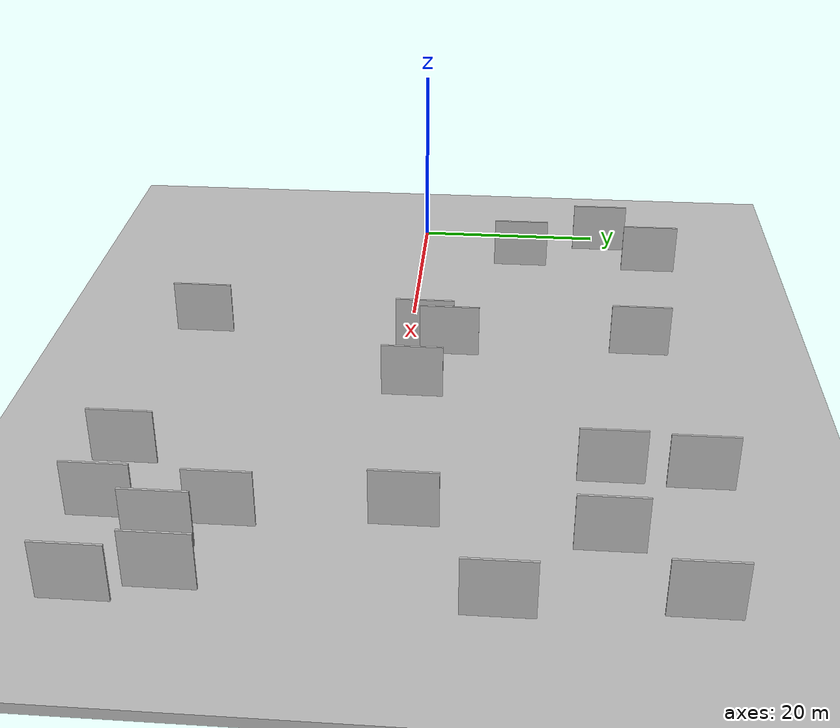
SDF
<?xml version="1.0" encoding="utf-8"?>

<sdf version="1.6">

   <world name="default">

      <gui fullscreen="0">

         <camera name="user_camera">

            <pose>-15 0 4.57585 0 0 0</pose>

            <view_controller>orbit</view_controller>

         </camera>

      </gui>

      <scene>

         <sky>

           <clouds>

             <speed>12</speed>

           </clouds>

         </sky>

         <ambient>0.4 0.4 0.4 1</ambient>

         <background>0.7 0.7 0.7 1</background>

         <shadows>1</shadows>

      </scene>

      <gravity>0 0 -9.8066</gravity>

      <magnetic_field>6e-06 2.3e-05 -4.2e-05</magnetic_field>

      <physics default="0" name="default_physics" type="ode">

         <ode>

            <solver>

               <type>quick</type>

               <iters>10</iters>

               <sor>1.0</sor>

               <use_dynamic_moi_rescaling>0</use_dynamic_moi_rescaling>

            </solver>

            <constraints>

               <cfm>0</cfm>

               <erp>0.2</erp>

               <contact_max_correcting_vel>100</contact_max_correcting_vel>

               <contact_surface_layer>0.001</contact_surface_layer>

            </constraints>

         </ode>

         <max_step_size>0.004</max_step_size>

         <real_time_factor>1</real_time_factor>

         <real_time_update_rate>250</real_time_update_rate>

      </physics>

      <light name="sun" type="directional">

         <cast_shadows>1</cast_shadows>

         <pose>0 0 10 0 0 0</pose>

         <diffuse>0.8 0.8 0.8 1</diffuse>

         <specular>0.2 0.2 0.2 1</specular>

         <attenuation>

            <range>1000</range>

            <constant>0.9</constant>

            <linear>0.01</linear>

            <quadratic>0.001</quadratic>

         </attenuation>

         <direction>-0.5 0.1 -0.9</direction>

      </light>

      <include>

         <name>ground_plane_1</name>

         <uri>model://HANNAS_ground_plane</uri>

         <pose>0 0 0  0 0 0</pose>

      </include>

      <include>

         <name>ground_plane_2</name>

         <uri>model://HANNAS_ground_plane</uri>

         <pose>100 0 0  0 0 0</pose>

      </include>

      <model name="HANNAS_wall_1">

         <static>1</static>

         <pose frame="">67.2538 10.1182 0.0 0.000000 0.000000 1.570796</pose>

         <link name="link">

            <pose frame="">0 0 3.00 0 0 0</pose>

            <collision name="collision">

               <geometry>

                  <box>

                     <size>6.00 0.2 6.00</size>

                  </box>

               </geometry>

               <max_contacts>10</max_contacts>

               <surface>

                  <contact>

                     <ode/>

                  </contact>

                  <bounce/>

                  <friction>

                     <torsional>

                        <ode/>

                     </torsional>

                     <ode/>

                  </friction>

               </surface>

            </collision>

            <visual name="visual">

               <cast_shadows>0</cast_shadows>

               <geometry>

                  <box>

                     <size>6.00 0.2 6.00</size>

                  </box>

               </geometry>

               <material>

                  <script>

                     <uri>model://HANNAS_wall/materials/scripts</uri>

                     <uri>model://HANNAS_wall/materials/textures</uri>

                     <name>vrc/HANNAS_wall</name>

                  </script>

               </material>

            </visual>

            <self_collide>0</self_collide>

            <enable_wind>0</enable_wind>

            <kinematic>0</kinematic>

         </link>

      </model>

      <model name="HANNAS_wall_2">

         <static>1</static>

         <pose frame="">56.9212 2.0275 0.0 0.000000 0.000000 1.570796</pose>

         <link name="link">

            <pose frame="">0 0 3.00 0 0 0</pose>

            <collision name="collision">

               <geometry>

                  <box>

                     <size>6.00 0.2 6.00</size>

                  </box>

               </geometry>

               <max_contacts>10</max_contacts>

               <surface>

                  <contact>

                     <ode/>

                  </contact>

                  <bounce/>

                  <friction>

                     <torsional>

                        <ode/>

                     </torsional>

                     <ode/>

                  </friction>

               </surface>

            </collision>

            <visual name="visual">

               <cast_shadows>0</cast_shadows>

               <geometry>

                  <box>

                     <size>6.00 0.2 6.00</size>

                  </box>

               </geometry>

               <material>

                  <script>

                     <uri>model://HANNAS_wall/materials/scripts</uri>

                     <uri>model://HANNAS_wall/materials/textures</uri>

                     <name>vrc/HANNAS_wall</name>

                  </script>

               </material>

            </visual>

            <self_collide>0</self_collide>

            <enable_wind>0</enable_wind>

            <kinematic>0</kinematic>

         </link>

      </model>

      <model name="HANNAS_wall_3">

         <static>1</static>

         <pose frame="">58.0375 -13.3037 0.0 0.000000 0.000000 1.570796</pose>

         <link name="link">

            <pose frame="">0 0 3.00 0 0 0</pose>

            <collision name="collision">

               <geometry>

                  <box>

                     <size>6.00 0.2 6.00</size>

                  </box>

               </geometry>

               <max_contacts>10</max_contacts>

               <surface>

                  <contact>

                     <ode/>

                  </contact>

                  <bounce/>

                  <friction>

                     <torsional>

                        <ode/>

                     </torsional>

                     <ode/>

                  </friction>

               </surface>

            </collision>

            <visual name="visual">

               <cast_shadows>0</cast_shadows>

               <geometry>

                  <box>

                     <size>6.00 0.2 6.00</size>

                  </box>

               </geometry>

               <material>

                  <script>

                     <uri>model://HANNAS_wall/materials/scripts</uri>

                     <uri>model://HANNAS_wall/materials/textures</uri>

                     <name>vrc/HANNAS_wall</name>

                  </script>

               </material>

            </visual>

            <self_collide>0</self_collide>

            <enable_wind>0</enable_wind>

            <kinematic>0</kinematic>

         </link>

      </model>

      <model name="HANNAS_wall_4">

         <static>1</static>

         <pose frame="">49.6122 19.6578 0.0 0.000000 0.000000 1.570796</pose>

         <link name="link">

            <pose frame="">0 0 3.00 0 0 0</pose>

            <collision name="collision">

               <geometry>

                  <box>

                     <size>6.00 0.2 6.00</size>

                  </box>

               </geometry>

               <max_contacts>10</max_contacts>

               <surface>

                  <contact>

                     <ode/>

                  </contact>

                  <bounce/>

                  <friction>

                     <torsional>

                        <ode/>

                     </torsional>

                     <ode/>

                  </friction>

               </surface>

            </collision>

            <visual name="visual">

               <cast_shadows>0</cast_shadows>

               <geometry>

                  <box>

                     <size>6.00 0.2 6.00</size>

                  </box>

               </geometry>

               <material>

                  <script>

                     <uri>model://HANNAS_wall/materials/scripts</uri>

                     <uri>model://HANNAS_wall/materials/textures</uri>

                     <name>vrc/HANNAS_wall</name>

                  </script>

               </material>

            </visual>

            <self_collide>0</self_collide>

            <enable_wind>0</enable_wind>

            <kinematic>0</kinematic>

         </link>

      </model>

      <model name="HANNAS_wall_5">

         <static>1</static>

         <pose frame="">8.8393 26.0841 0.0 0.000000 0.000000 1.570796</pose>

         <link name="link">

            <pose frame="">0 0 3.00 0 0 0</pose>

            <collision name="collision">

               <geometry>

                  <box>

                     <size>6.00 0.2 6.00</size>

                  </box>

               </geometry>

               <max_contacts>10</max_contacts>

               <surface>

                  <contact>

                     <ode/>

                  </contact>

                  <bounce/>

                  <friction>

                     <torsional>

                        <ode/>

                     </torsional>

                     <ode/>

                  </friction>

               </surface>

            </collision>

            <visual name="visual">

               <cast_shadows>0</cast_shadows>

               <geometry>

                  <box>

                     <size>6.00 0.2 6.00</size>

                  </box>

               </geometry>

               <material>

                  <script>

                     <uri>model://HANNAS_wall/materials/scripts</uri>

                     <uri>model://HANNAS_wall/materials/textures</uri>

                     <name>vrc/HANNAS_wall</name>

                  </script>

               </material>

            </visual>

            <self_collide>0</self_collide>

            <enable_wind>0</enable_wind>

            <kinematic>0</kinematic>

         </link>

      </model>

      <model name="HANNAS_wall_6">

         <static>1</static>

         <pose frame="">49.9615 -23.7700 0.0 0.000000 0.000000 1.570796</pose>

         <link name="link">

            <pose frame="">0 0 3.00 0 0 0</pose>

            <collision name="collision">

               <geometry>

                  <box>

                     <size>6.00 0.2 6.00</size>

                  </box>

               </geometry>

               <max_contacts>10</max_contacts>

               <surface>

                  <contact>

                     <ode/>

                  </contact>

                  <bounce/>

                  <friction>

                     <torsional>

                        <ode/>

                     </torsional>

                     <ode/>

                  </friction>

               </surface>

            </collision>

            <visual name="visual">

               <cast_shadows>0</cast_shadows>

               <geometry>

                  <box>

                     <size>6.00 0.2 6.00</size>

                  </box>

               </geometry>

               <material>

                  <script>

                     <uri>model://HANNAS_wall/materials/scripts</uri>

                     <uri>model://HANNAS_wall/materials/textures</uri>

                     <name>vrc/HANNAS_wall</name>

                  </script>

               </material>

            </visual>

            <self_collide>0</self_collide>

            <enable_wind>0</enable_wind>

            <kinematic>0</kinematic>

         </link>

      </model>

      <model name="HANNAS_wall_7">

         <static>1</static>

         <pose frame="">66.1703 25.8979 0.0 0.000000 0.000000 1.570796</pose>

         <link name="link">

            <pose frame="">0 0 3.00 0 0 0</pose>

            <collision name="collision">

               <geometry>

                  <box>

                     <size>6.00 0.2 6.00</size>

                  </box>

               </geometry>

               <max_contacts>10</max_contacts>

               <surface>

                  <contact>

                     <ode/>

                  </contact>

                  <bounce/>

                  <friction>

                     <torsional>

                        <ode/>

                     </torsional>

                     <ode/>

                  </friction>

               </surface>

            </collision>

            <visual name="visual">

               <cast_shadows>0</cast_shadows>

               <geometry>

                  <box>

                     <size>6.00 0.2 6.00</size>

                  </box>

               </geometry>

               <material>

                  <script>

                     <uri>model://HANNAS_wall/materials/scripts</uri>

                     <uri>model://HANNAS_wall/materials/textures</uri>

                     <name>vrc/HANNAS_wall</name>

                  </script>

               </material>

            </visual>

            <self_collide>0</self_collide>

            <enable_wind>0</enable_wind>

            <kinematic>0</kinematic>

         </link>

      </model>

      <model name="HANNAS_wall_8">

         <static>1</static>

         <pose frame="">29.0464 4.3088 0.0 0.000000 0.000000 1.570796</pose>

         <link name="link">

            <pose frame="">0 0 3.00 0 0 0</pose>

            <collision name="collision">

               <geometry>

                  <box>

                     <size>6.00 0.2 6.00</size>

                  </box>

               </geometry>

               <max_contacts>10</max_contacts>

               <surface>

                  <contact>

                     <ode/>

                  </contact>

                  <bounce/>

                  <friction>

                     <torsional>

                        <ode/>

                     </torsional>

                     <ode/>

                  </friction>

               </surface>

            </collision>

            <visual name="visual">

               <cast_shadows>0</cast_shadows>

               <geometry>

                  <box>

                     <size>6.00 0.2 6.00</size>

                  </box>

               </geometry>

               <material>

                  <script>

                     <uri>model://HANNAS_wall/materials/scripts</uri>

                     <uri>model://HANNAS_wall/materials/textures</uri>

                     <name>vrc/HANNAS_wall</name>

                  </script>

               </material>

            </visual>

            <self_collide>0</self_collide>

            <enable_wind>0</enable_wind>

            <kinematic>0</kinematic>

         </link>

      </model>

      <model name="HANNAS_wall_9">

         <static>1</static>

         <pose frame="">57.7498 -23.7136 0.0 0.000000 0.000000 1.570796</pose>

         <link name="link">

            <pose frame="">0 0 3.00 0 0 0</pose>

            <collision name="collision">

               <geometry>

                  <box>

                     <size>6.00 0.2 6.00</size>

                  </box>

               </geometry>

               <max_contacts>10</max_contacts>

               <surface>

                  <contact>

                     <ode/>

                  </contact>

                  <bounce/>

                  <friction>

                     <torsional>

                        <ode/>

                     </torsional>

                     <ode/>

                  </friction>

               </surface>

            </collision>

            <visual name="visual">

               <cast_shadows>0</cast_shadows>

               <geometry>

                  <box>

                     <size>6.00 0.2 6.00</size>

                  </box>

               </geometry>

               <material>

                  <script>

                     <uri>model://HANNAS_wall/materials/scripts</uri>

                     <uri>model://HANNAS_wall/materials/textures</uri>

                     <name>vrc/HANNAS_wall</name>

                  </script>

               </material>

            </visual>

            <self_collide>0</self_collide>

            <enable_wind>0</enable_wind>

            <kinematic>0</kinematic>

         </link>

      </model>

      <model name="HANNAS_wall_10">

         <static>1</static>

         <pose frame="">60.9760 -17.8432 0.0 0.000000 0.000000 1.570796</pose>

         <link name="link">

            <pose frame="">0 0 3.00 0 0 0</pose>

            <collision name="collision">

               <geometry>

                  <box>

                     <size>6.00 0.2 6.00</size>

                  </box>

               </geometry>

               <max_contacts>10</max_contacts>

               <surface>

                  <contact>

                     <ode/>

                  </contact>

                  <bounce/>

                  <friction>

                     <torsional>

                        <ode/>

                     </torsional>

                     <ode/>

                  </friction>

               </surface>

            </collision>

            <visual name="visual">

               <cast_shadows>0</cast_shadows>

               <geometry>

                  <box>

                     <size>6.00 0.2 6.00</size>

                  </box>

               </geometry>

               <material>

                  <script>

                     <uri>model://HANNAS_wall/materials/scripts</uri>

                     <uri>model://HANNAS_wall/materials/textures</uri>

                     <name>vrc/HANNAS_wall</name>

                  </script>

               </material>

            </visual>

            <self_collide>0</self_collide>

            <enable_wind>0</enable_wind>

            <kinematic>0</kinematic>

         </link>

      </model>

      <model name="HANNAS_wall_11">

         <static>1</static>

         <pose frame="">58.9232 19.0980 0.0 0.000000 0.000000 1.570796</pose>

         <link name="link">

            <pose frame="">0 0 3.00 0 0 0</pose>

            <collision name="collision">

               <geometry>

                  <box>

                     <size>6.00 0.2 6.00</size>

                  </box>

               </geometry>

               <max_contacts>10</max_contacts>

               <surface>

                  <contact>

                     <ode/>

                  </contact>

                  <bounce/>

                  <friction>

                     <torsional>

                        <ode/>

                     </torsional>

                     <ode/>

                  </friction>

               </surface>

            </collision>

            <visual name="visual">

               <cast_shadows>0</cast_shadows>

               <geometry>

                  <box>

                     <size>6.00 0.2 6.00</size>

                  </box>

               </geometry>

               <material>

                  <script>

                     <uri>model://HANNAS_wall/materials/scripts</uri>

                     <uri>model://HANNAS_wall/materials/textures</uri>

                     <name>vrc/HANNAS_wall</name>

                  </script>

               </material>

            </visual>

            <self_collide>0</self_collide>

            <enable_wind>0</enable_wind>

            <kinematic>0</kinematic>

         </link>

      </model>

      <model name="HANNAS_wall_12">

         <static>1</static>

         <pose frame="">37.0774 1.1211 0.0 0.000000 0.000000 1.570796</pose>

         <link name="link">

            <pose frame="">0 0 3.00 0 0 0</pose>

            <collision name="collision">

               <geometry>

                  <box>

                     <size>6.00 0.2 6.00</size>

                  </box>

               </geometry>

               <max_contacts>10</max_contacts>

               <surface>

                  <contact>

                     <ode/>

                  </contact>

                  <bounce/>

                  <friction>

                     <torsional>

                        <ode/>

                     </torsional>

                     <ode/>

                  </friction>

               </surface>

            </collision>

            <visual name="visual">

               <cast_shadows>0</cast_shadows>

               <geometry>

                  <box>

                     <size>6.00 0.2 6.00</size>

                  </box>

               </geometry>

               <material>

                  <script>

                     <uri>model://HANNAS_wall/materials/scripts</uri>

                     <uri>model://HANNAS_wall/materials/textures</uri>

                     <name>vrc/HANNAS_wall</name>

                  </script>

               </material>

            </visual>

            <self_collide>0</self_collide>

            <enable_wind>0</enable_wind>

            <kinematic>0</kinematic>

         </link>

      </model>

      <model name="HANNAS_wall_13">

         <static>1</static>

         <pose frame="">27.5820 23.7217 0.0 0.000000 0.000000 1.570796</pose>

         <link name="link">

            <pose frame="">0 0 3.00 0 0 0</pose>

            <collision name="collision">

               <geometry>

                  <box>

                     <size>6.00 0.2 6.00</size>

                  </box>

               </geometry>

               <max_contacts>10</max_contacts>

               <surface>

                  <contact>

                     <ode/>

                  </contact>

                  <bounce/>

                  <friction>

                     <torsional>

                        <ode/>

                     </torsional>

                     <ode/>

                  </friction>

               </surface>

            </collision>

            <visual name="visual">

               <cast_shadows>0</cast_shadows>

               <geometry>

                  <box>

                     <size>6.00 0.2 6.00</size>

                  </box>

               </geometry>

               <material>

                  <script>

                     <uri>model://HANNAS_wall/materials/scripts</uri>

                     <uri>model://HANNAS_wall/materials/textures</uri>

                     <name>vrc/HANNAS_wall</name>

                  </script>

               </material>

            </visual>

            <self_collide>0</self_collide>

            <enable_wind>0</enable_wind>

            <kinematic>0</kinematic>

         </link>

      </model>

      <model name="HANNAS_wall_14">

         <static>1</static>

         <pose frame="">49.9153 27.4808 0.0 0.000000 0.000000 1.570796</pose>

         <link name="link">

            <pose frame="">0 0 3.00 0 0 0</pose>

            <collision name="collision">

               <geometry>

                  <box>

                     <size>6.00 0.2 6.00</size>

                  </box>

               </geometry>

               <max_contacts>10</max_contacts>

               <surface>

                  <contact>

                     <ode/>

                  </contact>

                  <bounce/>

                  <friction>

                     <torsional>

                        <ode/>

                     </torsional>

                     <ode/>

                  </friction>

               </surface>

            </collision>

            <visual name="visual">

               <cast_shadows>0</cast_shadows>

               <geometry>

                  <box>

                     <size>6.00 0.2 6.00</size>

                  </box>

               </geometry>

               <material>

                  <script>

                     <uri>model://HANNAS_wall/materials/scripts</uri>

                     <uri>model://HANNAS_wall/materials/textures</uri>

                     <name>vrc/HANNAS_wall</name>

                  </script>

               </material>

            </visual>

            <self_collide>0</self_collide>

            <enable_wind>0</enable_wind>

            <kinematic>0</kinematic>

         </link>

      </model>

      <model name="HANNAS_wall_15">

         <static>1</static>

         <pose frame="">67.9207 -22.8072 0.0 0.000000 0.000000 1.570796</pose>

         <link name="link">

            <pose frame="">0 0 3.00 0 0 0</pose>

            <collision name="collision">

               <geometry>

                  <box>

                     <size>6.00 0.2 6.00</size>

                  </box>

               </geometry>

               <max_contacts>10</max_contacts>

               <surface>

                  <contact>

                     <ode/>

                  </contact>

                  <bounce/>

                  <friction>

                     <torsional>

                        <ode/>

                     </torsional>

                     <ode/>

                  </friction>

               </surface>

            </collision>

            <visual name="visual">

               <cast_shadows>0</cast_shadows>

               <geometry>

                  <box>

                     <size>6.00 0.2 6.00</size>

                  </box>

               </geometry>

               <material>

                  <script>

                     <uri>model://HANNAS_wall/materials/scripts</uri>

                     <uri>model://HANNAS_wall/materials/textures</uri>

                     <name>vrc/HANNAS_wall</name>

                  </script>

               </material>

            </visual>

            <self_collide>0</self_collide>

            <enable_wind>0</enable_wind>

            <kinematic>0</kinematic>

         </link>

      </model>

      <model name="HANNAS_wall_16">

         <static>1</static>

         <pose frame="">27.8299 1.6892 0.0 0.000000 0.000000 1.570796</pose>

         <link name="link">

            <pose frame="">0 0 3.00 0 0 0</pose>

            <collision name="collision">

               <geometry>

                  <box>

                     <size>6.00 0.2 6.00</size>

                  </box>

               </geometry>

               <max_contacts>10</max_contacts>

               <surface>

                  <contact>

                     <ode/>

                  </contact>

                  <bounce/>

                  <friction>

                     <torsional>

                        <ode/>

                     </torsional>

                     <ode/>

                  </friction>

               </surface>

            </collision>

            <visual name="visual">

               <cast_shadows>0</cast_shadows>

               <geometry>

                  <box>

                     <size>6.00 0.2 6.00</size>

                  </box>

               </geometry>

               <material>

                  <script>

                     <uri>model://HANNAS_wall/materials/scripts</uri>

                     <uri>model://HANNAS_wall/materials/textures</uri>

                     <name>vrc/HANNAS_wall</name>

                  </script>

               </material>

            </visual>

            <self_collide>0</self_collide>

            <enable_wind>0</enable_wind>

            <kinematic>0</kinematic>

         </link>

      </model>

      <model name="HANNAS_wall_17">

         <static>1</static>

         <pose frame="">8.3997 11.4411 0.0 0.000000 0.000000 1.570796</pose>

         <link name="link">

            <pose frame="">0 0 3.00 0 0 0</pose>

            <collision name="collision">

               <geometry>

                  <box>

                     <size>6.00 0.2 6.00</size>

                  </box>

               </geometry>

               <max_contacts>10</max_contacts>

               <surface>

                  <contact>

                     <ode/>

                  </contact>

                  <bounce/>

                  <friction>

                     <torsional>

                        <ode/>

                     </torsional>

                     <ode/>

                  </friction>

               </surface>

            </collision>

            <visual name="visual">

               <cast_shadows>0</cast_shadows>

               <geometry>

                  <box>

                     <size>6.00 0.2 6.00</size>

                  </box>

               </geometry>

               <material>

                  <script>

                     <uri>model://HANNAS_wall/materials/scripts</uri>

                     <uri>model://HANNAS_wall/materials/textures</uri>

                     <name>vrc/HANNAS_wall</name>

                  </script>

               </material>

            </visual>

            <self_collide>0</self_collide>

            <enable_wind>0</enable_wind>

            <kinematic>0</kinematic>

         </link>

      </model>

      <model name="HANNAS_wall_18">

         <static>1</static>

         <pose frame="">26.2471 -21.7116 0.0 0.000000 0.000000 1.570796</pose>

         <link name="link">

            <pose frame="">0 0 3.00 0 0 0</pose>

            <collision name="collision">

               <geometry>

                  <box>

                     <size>6.00 0.2 6.00</size>

                  </box>

               </geometry>

               <max_contacts>10</max_contacts>

               <surface>

                  <contact>

                     <ode/>

                  </contact>

                  <bounce/>

                  <friction>

                     <torsional>

                        <ode/>

                     </torsional>

                     <ode/>

                  </friction>

               </surface>

            </collision>

            <visual name="visual">

               <cast_shadows>0</cast_shadows>

               <geometry>

                  <box>

                     <size>6.00 0.2 6.00</size>

                  </box>

               </geometry>

               <material>

                  <script>

                     <uri>model://HANNAS_wall/materials/scripts</uri>

                     <uri>model://HANNAS_wall/materials/textures</uri>

                     <name>vrc/HANNAS_wall</name>

                  </script>

               </material>

            </visual>

            <self_collide>0</self_collide>

            <enable_wind>0</enable_wind>

            <kinematic>0</kinematic>

         </link>

      </model>

      <model name="HANNAS_wall_19">

         <static>1</static>

         <pose frame="">66.1073 -16.3886 0.0 0.000000 0.000000 1.570796</pose>

         <link name="link">

            <pose frame="">0 0 3.00 0 0 0</pose>

            <collision name="collision">

               <geometry>

                  <box>

                     <size>6.00 0.2 6.00</size>

                  </box>

               </geometry>

               <max_contacts>10</max_contacts>

               <surface>

                  <contact>

                     <ode/>

                  </contact>

                  <bounce/>

                  <friction>

                     <torsional>

                        <ode/>

                     </torsional>

                     <ode/>

                  </friction>

               </surface>

            </collision>

            <visual name="visual">

               <cast_shadows>0</cast_shadows>

               <geometry>

                  <box>

                     <size>6.00 0.2 6.00</size>

                  </box>

               </geometry>

               <material>

                  <script>

                     <uri>model://HANNAS_wall/materials/scripts</uri>

                     <uri>model://HANNAS_wall/materials/textures</uri>

                     <name>vrc/HANNAS_wall</name>

                  </script>

               </material>

            </visual>

            <self_collide>0</self_collide>

            <enable_wind>0</enable_wind>

            <kinematic>0</kinematic>

         </link>

      </model>

      <model name="HANNAS_wall_20">

         <static>1</static>

         <pose frame="">3.6569 20.6395 0.0 0.000000 0.000000 1.570796</pose>

         <link name="link">

            <pose frame="">0 0 3.00 0 0 0</pose>

            <collision name="collision">

               <geometry>

                  <box>

                     <size>6.00 0.2 6.00</size>

                  </box>

               </geometry>

               <max_contacts>10</max_contacts>

               <surface>

                  <contact>

                     <ode/>

                  </contact>

                  <bounce/>

                  <friction>

                     <torsional>

                        <ode/>

                     </torsional>

                     <ode/>

                  </friction>

               </surface>

            </collision>

            <visual name="visual">

               <cast_shadows>0</cast_shadows>

               <geometry>

                  <box>

                     <size>6.00 0.2 6.00</size>

                  </box>

               </geometry>

               <material>

                  <script>

                     <uri>model://HANNAS_wall/materials/scripts</uri>

                     <uri>model://HANNAS_wall/materials/textures</uri>

                     <name>vrc/HANNAS_wall</name>

                  </script>

               </material>

            </visual>

            <self_collide>0</self_collide>

            <enable_wind>0</enable_wind>

            <kinematic>0</kinematic>

         </link>

      </model>

   </world>

</sdf>

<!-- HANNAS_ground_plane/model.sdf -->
<sdf version="1.4">
<model name="HANNAS_ground_plane">
  <static>true</static>
    <link name="link">
      <collision name="collision">
        <geometry>
          <plane>
            <normal>0 0 1</normal>
            <size>1000 1000</size>
          </plane>
        </geometry>
        <surface>
          <friction>
            <ode>
              <mu>100</mu>
              <mu2>50</mu2>
            </ode>
          </friction>
        </surface>
      </collision>
      <visual name="visual">
        <cast_shadows>false</cast_shadows>
        <geometry>
          <plane>
            <normal>0 0 1</normal>
            <size>1000 1000</size>
          </plane>
        </geometry>
        <material>
          <script>
            <uri>model://HANNAS_ground_plane/materials/scripts/HANNAS_ground_plane.material</uri>
	    <uri>model://HANNAS_ground_plane/materials/textures</uri>
            <name>HANNASGroundPlane/Image</name>
          </script>
        </material>
      </visual>
    </link>
  </model>
</sdf>
